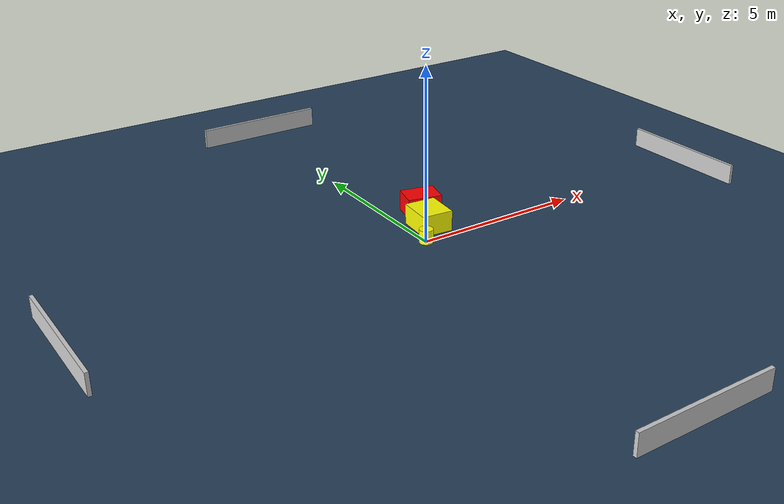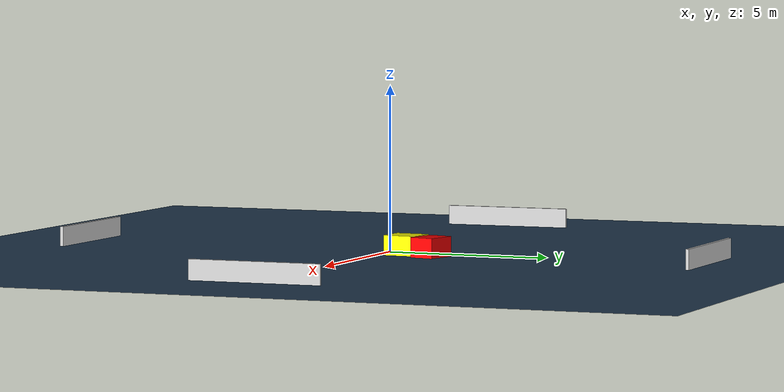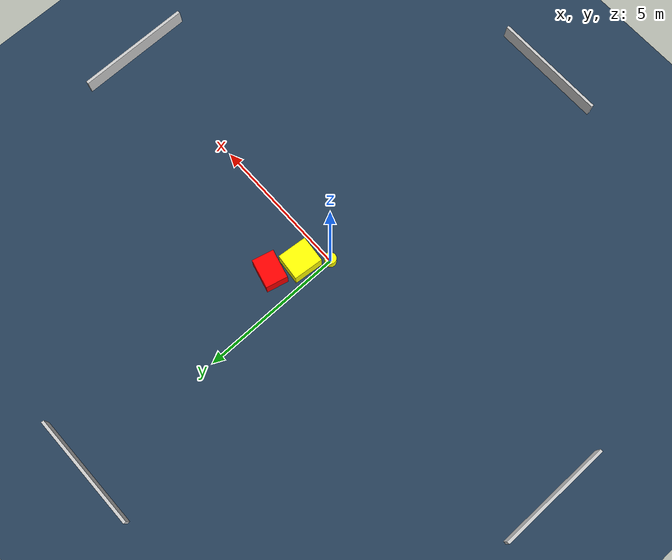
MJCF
<?xml version="1.0" ?>
<mujoco model="generated_environment">
  <option timestep="0.01" integrator="RK4" cone="elliptic"/>
  <default>
    <geom density="1"/>
  </default>
  <asset>
    <texture builtin="gradient" height="3072" name="skybox" rgb1="0.3 0.5 0.7" rgb2="0 0 0" type="skybox" width="512"/>
    <texture builtin="checker" height="300" name="groundplane" rgb1="0.2 0.3 0.4" rgb2="0.1 0.2 0.3" type="2d" width="300"/>
    <material name="groundplane" reflectance="0.2" texrepeat="5 5" texture="groundplane"/>
  </asset>
  <worldbody>
    <light dir="0 0 -1" directional="true" pos="0 0 1.5"/>
    <geom condim="3" friction="0.5 0.005 0.001" material="groundplane" name="floor" pos="0 0 0" size="0 0 0.05" type="plane"/>
    <body name="walls">
      <geom name="wall_1" condim="4" pos="-10.0 0.0 0.3" rgba="0.800000011920929 0.800000011920929 0.800000011920929 1.0" size="0.05 2.0 0.3" type="box"/>
      <geom name="wall_2" condim="4" pos="10.0 0.0 0.3" rgba="0.800000011920929 0.800000011920929 0.800000011920929 1.0" size="0.05 2.0 0.3" type="box"/>
      <geom name="wall_3" condim="4" pos="0.0 -10.0 0.3" rgba="0.800000011920929 0.800000011920929 0.800000011920929 1.0" size="2.0 0.05 0.3" type="box"/>
      <geom name="wall_4" condim="4" pos="0.0 10.0 0.3" rgba="0.800000011920929 0.800000011920929 0.800000011920929 1.0" size="2.0 0.05 0.3" type="box"/>
    </body>
    <body name="robot">
      <joint name="joint_x" type="slide" pos="0 0 0" axis="1 0 0"/>
      <joint name="joint_y" type="slide" pos="0 0 0" axis="0 1 0"/>
      <geom name="robot" type="cylinder" pos="0.0 0.0 0.2" size="0.2 0.2 0.0" mass="5.0" friction="1.0 0.005 0.0001" condim="4" rgba="1.0 1.0 0.0 1.0"/>
    </body>
    <body name="obstacle_1_movable">
      <geom name="obstacle_1_movable" condim="4" pos="0.6075086012967812 0.7523762869230317 0.3" euler="0 0 264.70734031252044" friction="0.0 0.005 0.001" rgba="1.0 1.0 0.0 1.0" size="0.5176512182183834 0.4594638185714106 0.3" type="box" mass="0.1"/>
      <joint type="free"/>
    </body>
    <body name="obstacle_2_static">
      <geom name="obstacle_2_static" condim="4" pos="0.9933206360506037 1.7051911383200058 0.3" euler="0 0 165.84241456369773" friction="0.0 0.005 0.001" rgba="1.0 0.0 0.0 1.0" size="0.5060514175842956 0.3801352082457984 0.3" type="box"/>
    </body>
  </worldbody>
  <actuator>
    <motor name="actuator_x" joint="joint_x" gear="1" ctrlrange="-1 1"/>
    <motor name="actuator_y" joint="joint_y" gear="1" ctrlrange="-1 1"/>
  </actuator>
</mujoco>
